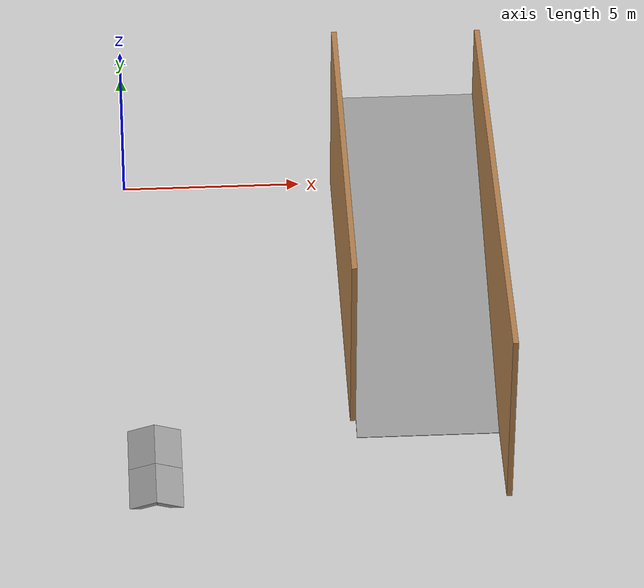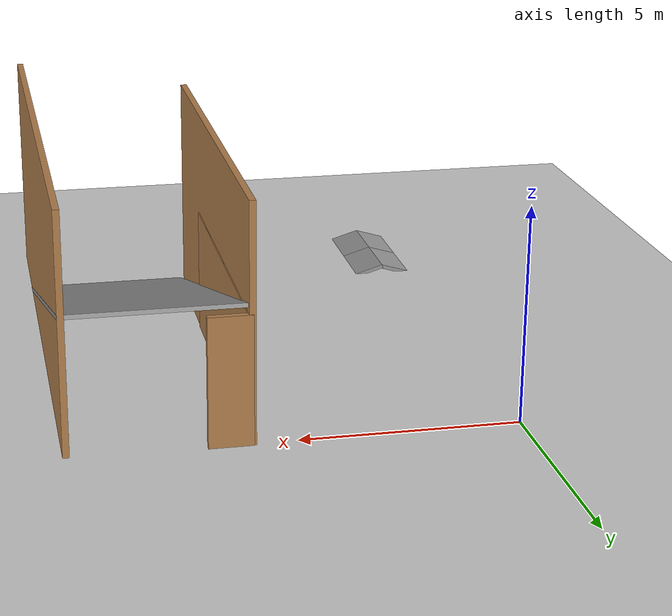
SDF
<sdf version="1.7">
 <world name="default">
  <model name="ground_plane">
   <static>1</static>
   <link name="link">
    <collision name="collision">
     <geometry><plane><normal>0 0 1</normal><size>100 100</size></plane></geometry>
     <surface>
      <contact><collide_bitmask>65535</collide_bitmask></contact>
      <friction><ode><mu>100</mu><mu2>50</mu2></ode></friction>
     </surface>
    </collision>
    <visual name="visual">
     <cast_shadows>0</cast_shadows>
     <geometry><plane><normal>0 0 1</normal><size>100 100</size></plane></geometry>
     <material>
      <script><uri>file://media/materials/scripts/gazebo.material</uri><name>Gazebo/Grey</name></script>
     </material>
    </visual>
   </link>
  </model>
  <model name="Untitled">
   <link name="Wall_0">
    <pose>0.971302 0.875091 0 0 0 -1.5708</pose>
    <inertial>
     <mass>1</mass>
     <inertia><ixx>1</ixx><ixy>0</ixy><ixz>0</ixz><iyy>1</iyy><iyz>0</iyz><izz>1</izz></inertia>
    </inertial>
    <visual name="Wall_0_Visual">
     <pose>0 0 1.5 0 -0 0</pose>
     <geometry><box><size>7 0.15 3</size></box></geometry>
     <material>
      <script><uri>file://media/materials/scripts/gazebo.material</uri><name>Gazebo/Wood</name></script>
      <ambient>1 1 1 1</ambient>
      <shader type="pixel"><normal_map>__default__</normal_map></shader>
      <diffuse>1 1 1 1</diffuse>
      <specular>0.2 0.2 0.2 1</specular>
      <emissive>0 0 0 1</emissive>
     </material>
     <meta><layer>0</layer></meta>
    </visual>
    <collision name="Wall_0_Collision">
     <pose>0 0 1.5 0 -0 0</pose>
     <geometry><box><size>7 0.15 3</size></box></geometry>
     <surface>
      <friction>
       <ode><mu>1</mu><mu2>1</mu2><fdir1>0 0 0</fdir1><slip1>0</slip1><slip2>0</slip2></ode>
       <torsional>
        <coefficient>1</coefficient>
        <patch_radius>0</patch_radius>
        <surface_radius>0</surface_radius>
        <use_patch_radius>1</use_patch_radius>
        <ode><slip>0</slip></ode>
       </torsional>
      </friction>
      <bounce><restitution_coefficient>0</restitution_coefficient><threshold>1e+06</threshold></bounce>
      <contact>
       <collide_without_contact>0</collide_without_contact>
       <collide_without_contact_bitmask>1</collide_without_contact_bitmask>
       <collide_bitmask>1</collide_bitmask>
       <ode>
        <soft_cfm>0</soft_cfm>
        <soft_erp>0.2</soft_erp>
        <kp>1e+13</kp>
        <kd>1</kd>
        <max_vel>0.01</max_vel>
        <min_depth>0</min_depth>
       </ode>
       <bullet>
        <split_impulse>1</split_impulse>
        <split_impulse_penetration_threshold>-0.01</split_impulse_penetration_threshold>
        <soft_cfm>0</soft_cfm>
        <soft_erp>0.2</soft_erp>
        <kp>1e+13</kp>
        <kd>1</kd>
       </bullet>
      </contact>
     </surface>
    </collision>
   </link>
   <link name="Wall_0_clone">
    <pose>1.42145 4.36985 0 0 -0 0</pose>
    <inertial>
     <mass>1</mass>
     <inertia><ixx>1</ixx><ixy>0</ixy><ixz>0</ixz><iyy>1</iyy><iyz>0</iyz><izz>1</izz></inertia>
    </inertial>
    <visual name="Wall_0_Visual">
     <pose>0 0 1.5 0 -0 0</pose>
     <geometry><box><size>1 0.15 3</size></box></geometry>
     <material>
      <script><uri>file://media/materials/scripts/gazebo.material</uri><name>Gazebo/Wood</name></script>
      <ambient>1 1 1 1</ambient>
      <shader type="pixel"><normal_map>__default__</normal_map></shader>
      <diffuse>1 1 1 1</diffuse>
      <specular>0.2 0.2 0.2 1</specular>
      <emissive>0 0 0 1</emissive>
     </material>
     <meta><layer>0</layer></meta>
    </visual>
    <collision name="Wall_0_Collision">
     <pose>0 0 1.5 0 -0 0</pose>
     <geometry><box><size>1 0.15 3</size></box></geometry>
     <surface>
      <friction>
       <ode><mu>1</mu><mu2>1</mu2><fdir1>0 0 0</fdir1><slip1>0</slip1><slip2>0</slip2></ode>
       <torsional>
        <coefficient>1</coefficient>
        <patch_radius>0</patch_radius>
        <surface_radius>0</surface_radius>
        <use_patch_radius>1</use_patch_radius>
        <ode><slip>0</slip></ode>
       </torsional>
      </friction>
      <bounce><restitution_coefficient>0</restitution_coefficient><threshold>1e+06</threshold></bounce>
      <contact>
       <collide_without_contact>0</collide_without_contact>
       <collide_without_contact_bitmask>1</collide_without_contact_bitmask>
       <collide_bitmask>1</collide_bitmask>
       <ode>
        <soft_cfm>0</soft_cfm>
        <soft_erp>0.2</soft_erp>
        <kp>1e+13</kp>
        <kd>1</kd>
        <max_vel>0.01</max_vel>
        <min_depth>0</min_depth>
       </ode>
       <bullet>
        <split_impulse>1</split_impulse>
        <split_impulse_penetration_threshold>-0.01</split_impulse_penetration_threshold>
        <soft_cfm>0</soft_cfm>
        <soft_erp>0.2</soft_erp>
        <kp>1e+13</kp>
        <kd>1</kd>
       </bullet>
      </contact>
     </surface>
    </collision>
   </link>
   <static>1</static>
   <pose>5.04163 -4.3705 0 0 -0 0</pose>
  </model>
  <model name="Untitled_1">
   <pose>5.03076 -6.49301 0 0 -0 0</pose>
   <link name="Wall_69">
    <collision name="Wall_69_Collision">
     <geometry><box><size>13 0.15 5.5</size></box></geometry>
     <pose>0 0 2.75 0 -0 0</pose>
    </collision>
    <visual name="Wall_69_Visual">
     <pose>0 0 2.75 0 -0 0</pose>
     <geometry><box><size>13 0.15 5.5</size></box></geometry>
     <material>
      <script><uri>file://media/materials/scripts/gazebo.material</uri><name>Gazebo/Wood</name></script>
      <ambient>1 1 1 1</ambient>
     </material>
     <meta><layer>0</layer></meta>
    </visual>
    <pose>4.95575 -0.0545 0 0 -0 -1.5708</pose>
   </link>
   <link name="Wall_72">
    <collision name="Wall_72_Collision">
     <geometry><box><size>10 0.15 5.5</size></box></geometry>
     <pose>0 0 2.75 0 -0 0</pose>
    </collision>
    <visual name="Wall_72_Visual">
     <pose>0 0 2.75 0 -0 0</pose>
     <geometry><box><size>10 0.15 5.5</size></box></geometry>
     <material>
      <script><uri>file://media/materials/scripts/gazebo.material</uri><name>Gazebo/Wood</name></script>
      <ambient>1 1 1 1</ambient>
     </material>
     <meta><layer>0</layer></meta>
    </visual>
    <pose>0.959284 1.5545 0 0 -0 -1.5708</pose>
   </link>
   <static>1</static>
  </model>
  <model name="simple_ramp_17deg_1.5wide">
   <link name="link">
    <pose>0 0 0.246036 0 -0.2967 0</pose>
    <inertial>
     <mass>1</mass>
     <inertia><ixx>1</ixx><ixy>0</ixy><ixz>0</ixz><iyy>1</iyy><iyz>0</iyz><izz>1</izz></inertia>
    </inertial>
    <visual name="visual">
     <geometry><box><size>2 1.5 0.1</size></box></geometry>
     <material>
      <script><uri>file://media/materials/scripts/gazebo.material</uri><name>Gazebo/Grey</name></script>
      <shader type="pixel"><normal_map>__default__</normal_map></shader>
      <ambient>0.3 0.3 0.3 1</ambient>
      <diffuse>0.7 0.7 0.7 1</diffuse>
      <specular>0.01 0.01 0.01 1</specular>
      <emissive>0 0 0 1</emissive>
     </material>
    </visual>
    <collision name="collision">
     <geometry><box><size>2 1.5 0.1</size></box></geometry>
     <surface>
      <friction>
       <ode><mu>100</mu><mu2>50</mu2><fdir1>0 0 0</fdir1><slip1>0</slip1><slip2>0</slip2></ode>
       <torsional>
        <coefficient>1</coefficient>
        <patch_radius>0</patch_radius>
        <surface_radius>0</surface_radius>
        <use_patch_radius>1</use_patch_radius>
        <ode><slip>0</slip></ode>
       </torsional>
      </friction>
      <bounce><restitution_coefficient>0</restitution_coefficient><threshold>1e+06</threshold></bounce>
      <contact>
       <collide_without_contact>0</collide_without_contact>
       <collide_without_contact_bitmask>1</collide_without_contact_bitmask>
       <collide_bitmask>1</collide_bitmask>
       <ode>
        <soft_cfm>0</soft_cfm>
        <soft_erp>0.2</soft_erp>
        <kp>1e+13</kp>
        <kd>1</kd>
        <max_vel>0.01</max_vel>
        <min_depth>0</min_depth>
       </ode>
       <bullet>
        <split_impulse>1</split_impulse>
        <split_impulse_penetration_threshold>-0.01</split_impulse_penetration_threshold>
        <soft_cfm>0</soft_cfm>
        <soft_erp>0.2</soft_erp>
        <kp>1e+13</kp>
        <kd>1</kd>
       </bullet>
      </contact>
     </surface>
    </collision>
   </link>
   <static>1</static>
   <pose>-0.344444 -10.7984 -0.383981 0 -0 0</pose>
  </model>
  <model name="simple_ramp_17deg_1.5wide_clone">
   <link name="link">
    <pose>0 0 0.246036 0 -0.2967 0</pose>
    <inertial>
     <mass>1</mass>
     <inertia><ixx>1</ixx><ixy>0</ixy><ixz>0</ixz><iyy>1</iyy><iyz>0</iyz><izz>1</izz></inertia>
    </inertial>
    <visual name="visual">
     <geometry><box><size>2 1.5 0.1</size></box></geometry>
     <material>
      <script><uri>file://media/materials/scripts/gazebo.material</uri><name>Gazebo/Grey</name></script>
      <shader type="pixel"><normal_map>__default__</normal_map></shader>
      <ambient>0.3 0.3 0.3 1</ambient>
      <diffuse>0.7 0.7 0.7 1</diffuse>
      <specular>0.01 0.01 0.01 1</specular>
      <emissive>0 0 0 1</emissive>
     </material>
    </visual>
    <collision name="collision">
     <geometry><box><size>2 1.5 0.1</size></box></geometry>
     <surface>
      <friction>
       <ode><mu>100</mu><mu2>50</mu2><fdir1>0 0 0</fdir1><slip1>0</slip1><slip2>0</slip2></ode>
       <torsional>
        <coefficient>1</coefficient>
        <patch_radius>0</patch_radius>
        <surface_radius>0</surface_radius>
        <use_patch_radius>1</use_patch_radius>
        <ode><slip>0</slip></ode>
       </torsional>
      </friction>
      <bounce><restitution_coefficient>0</restitution_coefficient><threshold>1e+06</threshold></bounce>
      <contact>
       <collide_without_contact>0</collide_without_contact>
       <collide_without_contact_bitmask>1</collide_without_contact_bitmask>
       <collide_bitmask>1</collide_bitmask>
       <ode>
        <soft_cfm>0</soft_cfm>
        <soft_erp>0.2</soft_erp>
        <kp>1e+13</kp>
        <kd>1</kd>
        <max_vel>0.01</max_vel>
        <min_depth>0</min_depth>
       </ode>
       <bullet>
        <split_impulse>1</split_impulse>
        <split_impulse_penetration_threshold>-0.01</split_impulse_penetration_threshold>
        <soft_cfm>0</soft_cfm>
        <soft_erp>0.2</soft_erp>
        <kp>1e+13</kp>
        <kd>1</kd>
       </bullet>
      </contact>
     </surface>
    </collision>
   </link>
   <static>1</static>
   <pose>-0.344886 -12.2967 -0.383981 0 -0 0</pose>
  </model>
  <model name="simple_ramp_17deg_1.5wide_clone_0">
   <link name="link">
    <pose>0 0 0.246036 0 -0.2967 0</pose>
    <inertial>
     <mass>1</mass>
     <inertia><ixx>1</ixx><ixy>0</ixy><ixz>0</ixz><iyy>1</iyy><iyz>0</iyz><izz>1</izz></inertia>
    </inertial>
    <visual name="visual">
     <geometry><box><size>2 1.5 0.1</size></box></geometry>
     <material>
      <script><uri>file://media/materials/scripts/gazebo.material</uri><name>Gazebo/Grey</name></script>
      <shader type="pixel"><normal_map>__default__</normal_map></shader>
      <ambient>0.3 0.3 0.3 1</ambient>
      <diffuse>0.7 0.7 0.7 1</diffuse>
      <specular>0.01 0.01 0.01 1</specular>
      <emissive>0 0 0 1</emissive>
     </material>
    </visual>
    <collision name="collision">
     <geometry><box><size>2 1.5 0.1</size></box></geometry>
     <surface>
      <friction>
       <ode><mu>100</mu><mu2>50</mu2><fdir1>0 0 0</fdir1><slip1>0</slip1><slip2>0</slip2></ode>
       <torsional>
        <coefficient>1</coefficient>
        <patch_radius>0</patch_radius>
        <surface_radius>0</surface_radius>
        <use_patch_radius>1</use_patch_radius>
        <ode><slip>0</slip></ode>
       </torsional>
      </friction>
      <bounce><restitution_coefficient>0</restitution_coefficient><threshold>1e+06</threshold></bounce>
      <contact>
       <collide_without_contact>0</collide_without_contact>
       <collide_without_contact_bitmask>1</collide_without_contact_bitmask>
       <collide_bitmask>1</collide_bitmask>
       <ode>
        <soft_cfm>0</soft_cfm>
        <soft_erp>0.2</soft_erp>
        <kp>1e+13</kp>
        <kd>1</kd>
        <max_vel>0.01</max_vel>
        <min_depth>0</min_depth>
       </ode>
       <bullet>
        <split_impulse>1</split_impulse>
        <split_impulse_penetration_threshold>-0.01</split_impulse_penetration_threshold>
        <soft_cfm>0</soft_cfm>
        <soft_erp>0.2</soft_erp>
        <kp>1e+13</kp>
        <kd>1</kd>
       </bullet>
      </contact>
     </surface>
    </collision>
   </link>
   <static>1</static>
   <pose>1.53838 -10.7964 -0.383981 0 -0 3.14159</pose>
  </model>
  <model name="simple_ramp_17deg_1.5wide_clone_0_clone">
   <link name="link">
    <pose>0 0 0.246036 0 -0.2967 0</pose>
    <inertial>
     <mass>1</mass>
     <inertia><ixx>1</ixx><ixy>0</ixy><ixz>0</ixz><iyy>1</iyy><iyz>0</iyz><izz>1</izz></inertia>
    </inertial>
    <visual name="visual">
     <geometry><box><size>2 1.5 0.1</size></box></geometry>
     <material>
      <script><uri>file://media/materials/scripts/gazebo.material</uri><name>Gazebo/Grey</name></script>
      <shader type="pixel"><normal_map>__default__</normal_map></shader>
      <ambient>0.3 0.3 0.3 1</ambient>
      <diffuse>0.7 0.7 0.7 1</diffuse>
      <specular>0.01 0.01 0.01 1</specular>
      <emissive>0 0 0 1</emissive>
     </material>
    </visual>
    <collision name="collision">
     <geometry><box><size>2 1.5 0.1</size></box></geometry>
     <surface>
      <friction>
       <ode><mu>100</mu><mu2>50</mu2><fdir1>0 0 0</fdir1><slip1>0</slip1><slip2>0</slip2></ode>
       <torsional>
        <coefficient>1</coefficient>
        <patch_radius>0</patch_radius>
        <surface_radius>0</surface_radius>
        <use_patch_radius>1</use_patch_radius>
        <ode><slip>0</slip></ode>
       </torsional>
      </friction>
      <bounce><restitution_coefficient>0</restitution_coefficient><threshold>1e+06</threshold></bounce>
      <contact>
       <collide_without_contact>0</collide_without_contact>
       <collide_without_contact_bitmask>1</collide_without_contact_bitmask>
       <collide_bitmask>1</collide_bitmask>
       <ode>
        <soft_cfm>0</soft_cfm>
        <soft_erp>0.2</soft_erp>
        <kp>1e+13</kp>
        <kd>1</kd>
        <max_vel>0.01</max_vel>
        <min_depth>0</min_depth>
       </ode>
       <bullet>
        <split_impulse>1</split_impulse>
        <split_impulse_penetration_threshold>-0.01</split_impulse_penetration_threshold>
        <soft_cfm>0</soft_cfm>
        <soft_erp>0.2</soft_erp>
        <kp>1e+13</kp>
        <kd>1</kd>
       </bullet>
      </contact>
     </surface>
    </collision>
   </link>
   <static>1</static>
   <pose>1.53829 -12.2957 -0.383981 0 -0 3.14159</pose>
  </model>
  <model name="simple_ramp_17deg_4wide">
   <link name="link">
    <pose>-0.330447 0.545662 1.4575 0 -0.2967 1.5707</pose>
    <inertial>
     <mass>1</mass>
     <inertia><ixx>1</ixx><ixy>0</ixy><ixz>0</ixz><iyy>1</iyy><iyz>0</iyz><izz>1</izz></inertia>
    </inertial>
    <visual name="visual">
     <geometry><box><size>11 4 0.1</size></box></geometry>
     <material>
      <script><uri>file://media/materials/scripts/gazebo.material</uri><name>Gazebo/Grey</name></script>
      <shader type="pixel"><normal_map>__default__</normal_map></shader>
      <ambient>0.3 0.3 0.3 1</ambient>
      <diffuse>0.7 0.7 0.7 1</diffuse>
      <specular>0.01 0.01 0.01 1</specular>
      <emissive>0 0 0 1</emissive>
     </material>
    </visual>
    <collision name="collision">
     <geometry><box><size>11 4 0.1</size></box></geometry>
     <surface>
      <friction>
       <ode><mu>100</mu><mu2>50</mu2><fdir1>0 0 0</fdir1><slip1>0</slip1><slip2>0</slip2></ode>
       <torsional>
        <coefficient>1</coefficient>
        <patch_radius>0</patch_radius>
        <surface_radius>0</surface_radius>
        <use_patch_radius>1</use_patch_radius>
        <ode><slip>0</slip></ode>
       </torsional>
      </friction>
      <bounce><restitution_coefficient>0</restitution_coefficient><threshold>1e+06</threshold></bounce>
      <contact>
       <collide_without_contact>0</collide_without_contact>
       <collide_without_contact_bitmask>1</collide_without_contact_bitmask>
       <collide_bitmask>1</collide_bitmask>
       <ode>
        <soft_cfm>0</soft_cfm>
        <soft_erp>0.2</soft_erp>
        <kp>1e+13</kp>
        <kd>1</kd>
        <max_vel>0.01</max_vel>
        <min_depth>0</min_depth>
       </ode>
       <bullet>
        <split_impulse>1</split_impulse>
        <split_impulse_penetration_threshold>-0.01</split_impulse_penetration_threshold>
        <soft_cfm>0</soft_cfm>
        <soft_erp>0.2</soft_erp>
        <kp>1e+13</kp>
        <kd>1</kd>
       </bullet>
      </contact>
     </surface>
    </collision>
   </link>
   <static>1</static>
   <pose>8.39495 -5.8785 0.106133 0 -0 0</pose>
  </model>
 </world>
</sdf>
